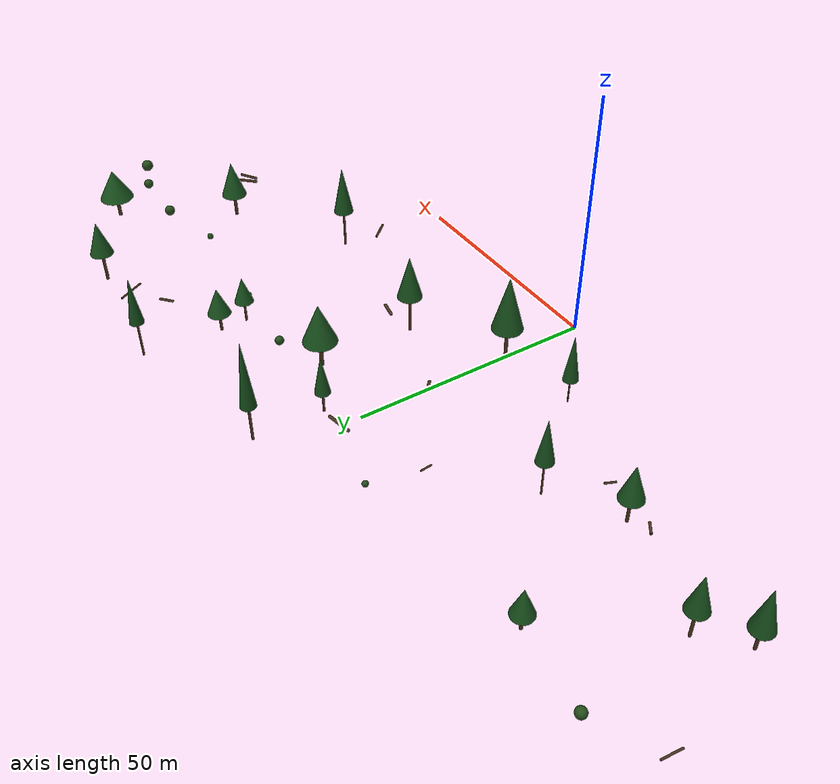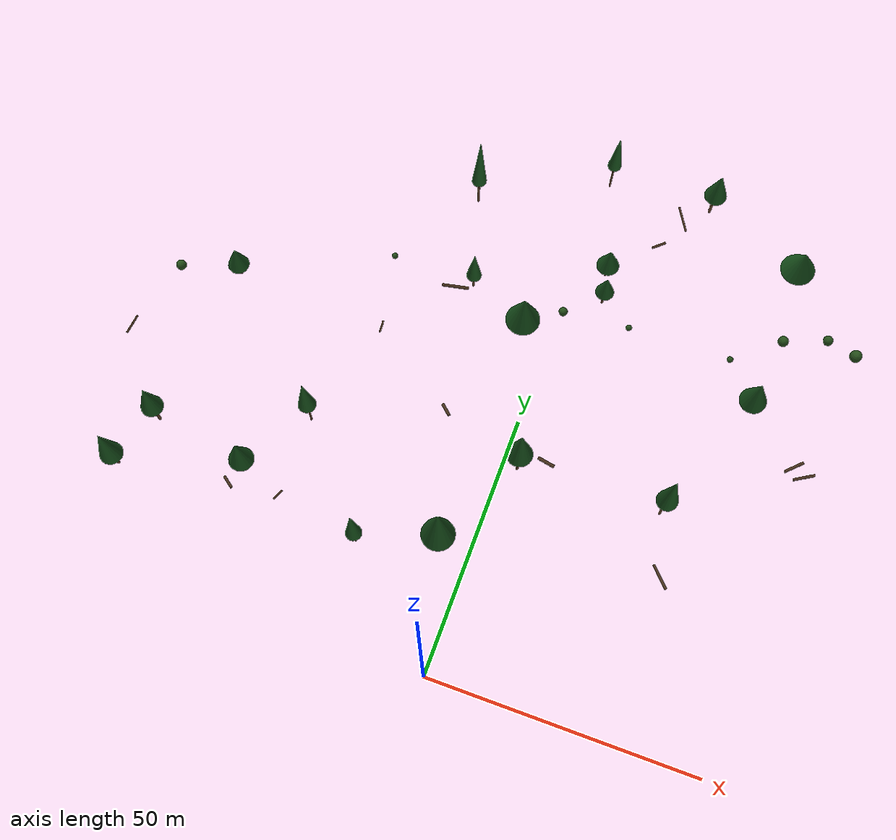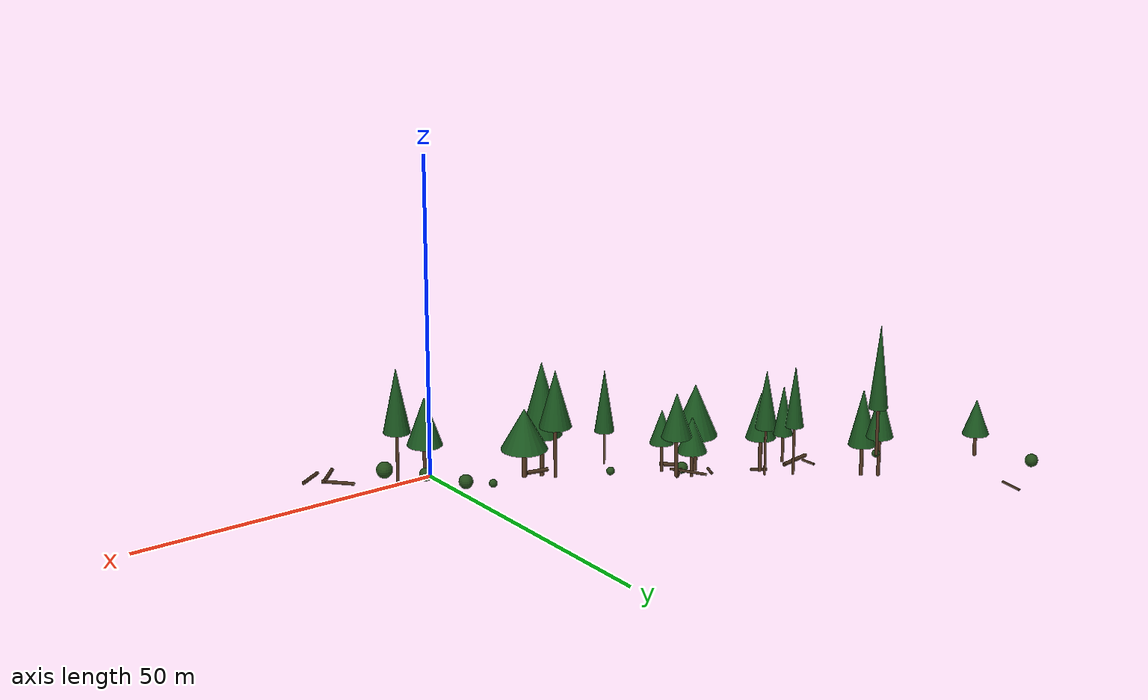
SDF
<sdf version="1.9">
 <world name="blue_mountains">
  <model name="spawn_tree_001">
   <static>true</static>
   <pose>-64.5 29.3 -5.54 0 0 4.25</pose>
   <link name="trunk">
    <pose>0 0 3.9 0 0 0</pose>
    <collision name="c">
     <geometry><cylinder><radius>0.28</radius><length>7.8</length></cylinder></geometry>
    </collision>
    <visual name="v">
     <geometry><cylinder><radius>0.28</radius><length>7.8</length></cylinder></geometry>
     <material><ambient>0.30 0.20 0.12 1</ambient><diffuse>0.35 0.23 0.14 1</diffuse></material>
    </visual>
   </link>
   <link name="canopy">
    <pose>0 0 10.4 0 0 0</pose>
    <collision name="c"><geometry><cone><radius>2.14</radius><length>7.8</length></cone></geometry></collision>
    <visual name="v">
     <geometry><cone><radius>2.14</radius><length>7.8</length></cone></geometry>
     <material><ambient>0.08 0.28 0.10 1</ambient><diffuse>0.10 0.34 0.12 1</diffuse></material>
    </visual>
   </link>
  </model>
  <model name="spawn_tree_002">
   <static>true</static>
   <pose>3.4 37.2 12.71 0 0 3.32</pose>
   <link name="trunk">
    <pose>0 0 4.4 0 0 0</pose>
    <collision name="c">
     <geometry><cylinder><radius>0.24</radius><length>8.8</length></cylinder></geometry>
    </collision>
    <visual name="v">
     <geometry><cylinder><radius>0.24</radius><length>8.8</length></cylinder></geometry>
     <material><ambient>0.30 0.20 0.12 1</ambient><diffuse>0.35 0.23 0.14 1</diffuse></material>
    </visual>
   </link>
   <link name="canopy">
    <pose>0 0 11.5 0 0 0</pose>
    <collision name="c"><geometry><cone><radius>2.26</radius><length>8.1</length></cone></geometry></collision>
    <visual name="v">
     <geometry><cone><radius>2.26</radius><length>8.1</length></cone></geometry>
     <material><ambient>0.08 0.28 0.10 1</ambient><diffuse>0.10 0.34 0.12 1</diffuse></material>
    </visual>
   </link>
  </model>
  <model name="spawn_tree_005">
   <static>true</static>
   <pose>2.5 85.3 28.51 0 0 2.96</pose>
   <link name="trunk">
    <pose>0 0 3.75 0 0 0</pose>
    <collision name="c">
     <geometry><cylinder><radius>0.16</radius><length>7.5</length></cylinder></geometry>
    </collision>
    <visual name="v">
     <geometry><cylinder><radius>0.16</radius><length>7.5</length></cylinder></geometry>
     <material><ambient>0.30 0.20 0.12 1</ambient><diffuse>0.35 0.23 0.14 1</diffuse></material>
    </visual>
   </link>
   <link name="canopy">
    <pose>0 0 10.066666666666666 0 0 0</pose>
    <collision name="c"><geometry><cone><radius>1.12</radius><length>7.7</length></cone></geometry></collision>
    <visual name="v">
     <geometry><cone><radius>1.12</radius><length>7.7</length></cone></geometry>
     <material><ambient>0.08 0.28 0.10 1</ambient><diffuse>0.10 0.34 0.12 1</diffuse></material>
    </visual>
   </link>
  </model>
  <model name="spawn_tree_006">
   <static>true</static>
   <pose>-18.4 77.6 23.78 0 0 5.46</pose>
   <link name="trunk">
    <pose>0 0 4.15 0 0 0</pose>
    <collision name="c">
     <geometry><cylinder><radius>0.2</radius><length>8.3</length></cylinder></geometry>
    </collision>
    <visual name="v">
     <geometry><cylinder><radius>0.2</radius><length>8.3</length></cylinder></geometry>
     <material><ambient>0.30 0.20 0.12 1</ambient><diffuse>0.35 0.23 0.14 1</diffuse></material>
    </visual>
   </link>
   <link name="canopy">
    <pose>0 0 12.033333333333333 0 0 0</pose>
    <collision name="c"><geometry><cone><radius>1.24</radius><length>11.2</length></cone></geometry></collision>
    <visual name="v">
     <geometry><cone><radius>1.24</radius><length>11.2</length></cone></geometry>
     <material><ambient>0.08 0.28 0.10 1</ambient><diffuse>0.10 0.34 0.12 1</diffuse></material>
    </visual>
   </link>
  </model>
  <model name="spawn_tree_009">
   <static>true</static>
   <pose>28.3 36.4 17.22 0 0 1.83</pose>
   <link name="trunk">
    <pose>0 0 4.45 0 0 0</pose>
    <collision name="c">
     <geometry><cylinder><radius>0.21</radius><length>8.9</length></cylinder></geometry>
    </collision>
    <visual name="v">
     <geometry><cylinder><radius>0.21</radius><length>8.9</length></cylinder></geometry>
     <material><ambient>0.30 0.20 0.12 1</ambient><diffuse>0.35 0.23 0.14 1</diffuse></material>
    </visual>
   </link>
   <link name="canopy">
    <pose>0 0 11.866666666666667 0 0 0</pose>
    <collision name="c"><geometry><cone><radius>1.81</radius><length>8.9</length></cone></geometry></collision>
    <visual name="v">
     <geometry><cone><radius>1.81</radius><length>8.9</length></cone></geometry>
     <material><ambient>0.08 0.28 0.10 1</ambient><diffuse>0.10 0.34 0.12 1</diffuse></material>
    </visual>
   </link>
  </model>
  <model name="spawn_tree_013">
   <static>true</static>
   <pose>-19.4 17.9 3.17 0 0 2.45</pose>
   <link name="trunk">
    <pose>0 0 3.45 0 0 0</pose>
    <collision name="c">
     <geometry><cylinder><radius>0.15</radius><length>6.9</length></cylinder></geometry>
    </collision>
    <visual name="v">
     <geometry><cylinder><radius>0.15</radius><length>6.9</length></cylinder></geometry>
     <material><ambient>0.30 0.20 0.12 1</ambient><diffuse>0.35 0.23 0.14 1</diffuse></material>
    </visual>
   </link>
   <link name="canopy">
    <pose>0 0 10.1 0 0 0</pose>
    <collision name="c"><geometry><cone><radius>1.47</radius><length>9.6</length></cone></geometry></collision>
    <visual name="v">
     <geometry><cone><radius>1.47</radius><length>9.6</length></cone></geometry>
     <material><ambient>0.08 0.28 0.10 1</ambient><diffuse>0.10 0.34 0.12 1</diffuse></material>
    </visual>
   </link>
  </model>
  <model name="spawn_tree_014">
   <static>true</static>
   <pose>-35.2 36.2 3.68 0 0 5.43</pose>
   <link name="trunk">
    <pose>0 0 4.45 0 0 0</pose>
    <collision name="c">
     <geometry><cylinder><radius>0.17</radius><length>8.9</length></cylinder></geometry>
    </collision>
    <visual name="v">
     <geometry><cylinder><radius>0.17</radius><length>8.9</length></cylinder></geometry>
     <material><ambient>0.30 0.20 0.12 1</ambient><diffuse>0.35 0.23 0.14 1</diffuse></material>
    </visual>
   </link>
   <link name="canopy">
    <pose>0 0 11.833333333333334 0 0 0</pose>
    <collision name="c"><geometry><cone><radius>1.64</radius><length>8.8</length></cone></geometry></collision>
    <visual name="v">
     <geometry><cone><radius>1.64</radius><length>8.8</length></cone></geometry>
     <material><ambient>0.08 0.28 0.10 1</ambient><diffuse>0.10 0.34 0.12 1</diffuse></material>
    </visual>
   </link>
  </model>
  <model name="spawn_tree_016">
   <static>true</static>
   <pose>7.8 66.3 24.00 0 0 0.34</pose>
   <link name="trunk">
    <pose>0 0 2.3 0 0 0</pose>
    <collision name="c">
     <geometry><cylinder><radius>0.19</radius><length>4.6</length></cylinder></geometry>
    </collision>
    <visual name="v">
     <geometry><cylinder><radius>0.19</radius><length>4.6</length></cylinder></geometry>
     <material><ambient>0.30 0.20 0.12 1</ambient><diffuse>0.35 0.23 0.14 1</diffuse></material>
    </visual>
   </link>
   <link name="canopy">
    <pose>0 0 6.066666666666666 0 0 0</pose>
    <collision name="c"><geometry><cone><radius>1.56</radius><length>4.4</length></cone></geometry></collision>
    <visual name="v">
     <geometry><cone><radius>1.56</radius><length>4.4</length></cone></geometry>
     <material><ambient>0.08 0.28 0.10 1</ambient><diffuse>0.10 0.34 0.12 1</diffuse></material>
    </visual>
   </link>
  </model>
  <model name="spawn_tree_017">
   <static>true</static>
   <pose>6.8 71.1 24.64 0 0 3.8</pose>
   <link name="trunk">
    <pose>0 0 2.05 0 0 0</pose>
    <collision name="c">
     <geometry><cylinder><radius>0.22</radius><length>4.1</length></cylinder></geometry>
    </collision>
    <visual name="v">
     <geometry><cylinder><radius>0.22</radius><length>4.1</length></cylinder></geometry>
     <material><ambient>0.30 0.20 0.12 1</ambient><diffuse>0.35 0.23 0.14 1</diffuse></material>
    </visual>
   </link>
   <link name="canopy">
    <pose>0 0 5.633333333333333 0 0 0</pose>
    <collision name="c"><geometry><cone><radius>1.89</radius><length>4.6</length></cone></geometry></collision>
    <visual name="v">
     <geometry><cone><radius>1.89</radius><length>4.6</length></cone></geometry>
     <material><ambient>0.08 0.28 0.10 1</ambient><diffuse>0.10 0.34 0.12 1</diffuse></material>
    </visual>
   </link>
  </model>
  <model name="spawn_tree_019">
   <static>true</static>
   <pose>35.7 76.1 33.03 0 0 0.04</pose>
   <link name="trunk">
    <pose>0 0 2.15 0 0 0</pose>
    <collision name="c">
     <geometry><cylinder><radius>0.28</radius><length>4.3</length></cylinder></geometry>
    </collision>
    <visual name="v">
     <geometry><cylinder><radius>0.28</radius><length>4.3</length></cylinder></geometry>
     <material><ambient>0.30 0.20 0.12 1</ambient><diffuse>0.35 0.23 0.14 1</diffuse></material>
    </visual>
   </link>
   <link name="canopy">
    <pose>0 0 5.933333333333334 0 0 0</pose>
    <collision name="c"><geometry><cone><radius>2.76</radius><length>4.9</length></cone></geometry></collision>
    <visual name="v">
     <geometry><cone><radius>2.76</radius><length>4.9</length></cone></geometry>
     <material><ambient>0.08 0.28 0.10 1</ambient><diffuse>0.10 0.34 0.12 1</diffuse></material>
    </visual>
   </link>
  </model>
  <model name="spawn_tree_022">
   <static>true</static>
   <pose>35.8 54.9 26.25 0 0 0.46</pose>
   <link name="trunk">
    <pose>0 0 2.6 0 0 0</pose>
    <collision name="c">
     <geometry><cylinder><radius>0.28</radius><length>5.2</length></cylinder></geometry>
    </collision>
    <visual name="v">
     <geometry><cylinder><radius>0.28</radius><length>5.2</length></cylinder></geometry>
     <material><ambient>0.30 0.20 0.12 1</ambient><diffuse>0.35 0.23 0.14 1</diffuse></material>
    </visual>
   </link>
   <link name="canopy">
    <pose>0 0 7.2666666666666675 0 0 0</pose>
    <collision name="c"><geometry><cone><radius>2.21</radius><length>6.2</length></cone></geometry></collision>
    <visual name="v">
     <geometry><cone><radius>2.21</radius><length>6.2</length></cone></geometry>
     <material><ambient>0.08 0.28 0.10 1</ambient><diffuse>0.10 0.34 0.12 1</diffuse></material>
    </visual>
   </link>
  </model>
  <model name="spawn_tree_024">
   <static>true</static>
   <pose>-3.7 58.7 19.06 0 0 5.47</pose>
   <link name="trunk">
    <pose>0 0 3.05 0 0 0</pose>
    <collision name="c">
     <geometry><cylinder><radius>0.34</radius><length>6.1</length></cylinder></geometry>
    </collision>
    <visual name="v">
     <geometry><cylinder><radius>0.34</radius><length>6.1</length></cylinder></geometry>
     <material><ambient>0.30 0.20 0.12 1</ambient><diffuse>0.35 0.23 0.14 1</diffuse></material>
    </visual>
   </link>
   <link name="canopy">
    <pose>0 0 8.433333333333334 0 0 0</pose>
    <collision name="c"><geometry><cone><radius>2.92</radius><length>7.0</length></cone></geometry></collision>
    <visual name="v">
     <geometry><cone><radius>2.92</radius><length>7.0</length></cone></geometry>
     <material><ambient>0.08 0.28 0.10 1</ambient><diffuse>0.10 0.34 0.12 1</diffuse></material>
    </visual>
   </link>
  </model>
  <model name="spawn_tree_027">
   <static>true</static>
   <pose>-44.1 24.7 -1.49 0 0 3.49</pose>
   <link name="trunk">
    <pose>0 0 3.35 0 0 0</pose>
    <collision name="c">
     <geometry><cylinder><radius>0.3</radius><length>6.7</length></cylinder></geometry>
    </collision>
    <visual name="v">
     <geometry><cylinder><radius>0.3</radius><length>6.7</length></cylinder></geometry>
     <material><ambient>0.30 0.20 0.12 1</ambient><diffuse>0.35 0.23 0.14 1</diffuse></material>
    </visual>
   </link>
   <link name="canopy">
    <pose>0 0 9.133333333333333 0 0 0</pose>
    <collision name="c"><geometry><cone><radius>2.34</radius><length>7.3</length></cone></geometry></collision>
    <visual name="v">
     <geometry><cone><radius>2.34</radius><length>7.3</length></cone></geometry>
     <material><ambient>0.08 0.28 0.10 1</ambient><diffuse>0.10 0.34 0.12 1</diffuse></material>
    </visual>
   </link>
  </model>
  <model name="spawn_tree_029">
   <static>true</static>
   <pose>-5.3 21.7 5.94 0 0 5.07</pose>
   <link name="trunk">
    <pose>0 0 4.1 0 0 0</pose>
    <collision name="c">
     <geometry><cylinder><radius>0.34</radius><length>8.2</length></cylinder></geometry>
    </collision>
    <visual name="v">
     <geometry><cylinder><radius>0.34</radius><length>8.2</length></cylinder></geometry>
     <material><ambient>0.30 0.20 0.12 1</ambient><diffuse>0.35 0.23 0.14 1</diffuse></material>
    </visual>
   </link>
   <link name="canopy">
    <pose>0 0 11.866666666666665 0 0 0</pose>
    <collision name="c"><geometry><cone><radius>2.99</radius><length>11.0</length></cone></geometry></collision>
    <visual name="v">
     <geometry><cone><radius>2.99</radius><length>11.0</length></cone></geometry>
     <material><ambient>0.08 0.28 0.10 1</ambient><diffuse>0.10 0.34 0.12 1</diffuse></material>
    </visual>
   </link>
  </model>
  <model name="spawn_tree_030">
   <static>true</static>
   <pose>19.7 84.2 32.00 0 0 3.72</pose>
   <link name="trunk">
    <pose>0 0 2.9 0 0 0</pose>
    <collision name="c">
     <geometry><cylinder><radius>0.23</radius><length>5.8</length></cylinder></geometry>
    </collision>
    <visual name="v">
     <geometry><cylinder><radius>0.23</radius><length>5.8</length></cylinder></geometry>
     <material><ambient>0.30 0.20 0.12 1</ambient><diffuse>0.35 0.23 0.14 1</diffuse></material>
    </visual>
   </link>
   <link name="canopy">
    <pose>0 0 7.6 0 0 0</pose>
    <collision name="c"><geometry><cone><radius>1.81</radius><length>5.4</length></cone></geometry></collision>
    <visual name="v">
     <geometry><cone><radius>1.81</radius><length>5.4</length></cone></geometry>
     <material><ambient>0.08 0.28 0.10 1</ambient><diffuse>0.10 0.34 0.12 1</diffuse></material>
    </visual>
   </link>
  </model>
  <model name="spawn_tree_031">
   <static>true</static>
   <pose>-69.9 19.6 -9.86 0 0 4.64</pose>
   <link name="trunk">
    <pose>0 0 3.4 0 0 0</pose>
    <collision name="c">
     <geometry><cylinder><radius>0.31</radius><length>6.8</length></cylinder></geometry>
    </collision>
    <visual name="v">
     <geometry><cylinder><radius>0.31</radius><length>6.8</length></cylinder></geometry>
     <material><ambient>0.30 0.20 0.12 1</ambient><diffuse>0.35 0.23 0.14 1</diffuse></material>
    </visual>
   </link>
   <link name="canopy">
    <pose>0 0 9.933333333333334 0 0 0</pose>
    <collision name="c"><geometry><cone><radius>2.28</radius><length>9.4</length></cone></geometry></collision>
    <visual name="v">
     <geometry><cone><radius>2.28</radius><length>9.4</length></cone></geometry>
     <material><ambient>0.08 0.28 0.10 1</ambient><diffuse>0.10 0.34 0.12 1</diffuse></material>
    </visual>
   </link>
  </model>
  <model name="spawn_tree_033">
   <static>true</static>
   <pose>-14.3 64.0 19.48 0 0 2.78</pose>
   <link name="trunk">
    <pose>0 0 2.5 0 0 0</pose>
    <collision name="c">
     <geometry><cylinder><radius>0.19</radius><length>5.0</length></cylinder></geometry>
    </collision>
    <visual name="v">
     <geometry><cylinder><radius>0.19</radius><length>5.0</length></cylinder></geometry>
     <material><ambient>0.30 0.20 0.12 1</ambient><diffuse>0.35 0.23 0.14 1</diffuse></material>
    </visual>
   </link>
   <link name="canopy">
    <pose>0 0 7.266666666666667 0 0 0</pose>
    <collision name="c"><geometry><cone><radius>1.29</radius><length>6.8</length></cone></geometry></collision>
    <visual name="v">
     <geometry><cone><radius>1.29</radius><length>6.8</length></cone></geometry>
     <material><ambient>0.08 0.28 0.10 1</ambient><diffuse>0.10 0.34 0.12 1</diffuse></material>
    </visual>
   </link>
  </model>
  <model name="spawn_tree_037">
   <static>true</static>
   <pose>-57.1 57.1 8.36 0 0 0.79</pose>
   <link name="trunk">
    <pose>0 0 2.1 0 0 0</pose>
    <collision name="c">
     <geometry><cylinder><radius>0.26</radius><length>4.2</length></cylinder></geometry>
    </collision>
    <visual name="v">
     <geometry><cylinder><radius>0.26</radius><length>4.2</length></cylinder></geometry>
     <material><ambient>0.30 0.20 0.12 1</ambient><diffuse>0.35 0.23 0.14 1</diffuse></material>
    </visual>
   </link>
   <link name="canopy">
    <pose>0 0 5.933333333333334 0 0 0</pose>
    <collision name="c"><geometry><cone><radius>1.94</radius><length>5.2</length></cone></geometry></collision>
    <visual name="v">
     <geometry><cone><radius>1.94</radius><length>5.2</length></cone></geometry>
     <material><ambient>0.08 0.28 0.10 1</ambient><diffuse>0.10 0.34 0.12 1</diffuse></material>
    </visual>
   </link>
  </model>
  <model name="spawn_bush_003">
   <static>true</static>
   <pose>44.0 67.9 32.63 0 0 4.43</pose>
   <link name="foliage">
    <collision name="c"><geometry><sphere><radius>0.8</radius></sphere></geometry></collision>
    <visual name="v">
     <geometry><sphere><radius>0.8</radius></sphere></geometry>
     <material><ambient>0.10 0.24 0.08 1</ambient><diffuse>0.14 0.30 0.10 1</diffuse></material>
    </visual>
   </link>
  </model>
  <model name="spawn_bush_009">
   <static>true</static>
   <pose>2.1 63.3 22.21 0 0 1.26</pose>
   <link name="foliage">
    <collision name="c"><geometry><sphere><radius>0.76</radius></sphere></geometry></collision>
    <visual name="v">
     <geometry><sphere><radius>0.76</radius></sphere></geometry>
     <material><ambient>0.10 0.24 0.08 1</ambient><diffuse>0.14 0.30 0.10 1</diffuse></material>
    </visual>
   </link>
  </model>
  <model name="spawn_bush_011">
   <static>true</static>
   <pose>37.7 66.8 29.87 0 0 2.72</pose>
   <link name="foliage">
    <collision name="c"><geometry><sphere><radius>0.87</radius></sphere></geometry></collision>
    <visual name="v">
     <geometry><sphere><radius>0.87</radius></sphere></geometry>
     <material><ambient>0.10 0.24 0.08 1</ambient><diffuse>0.14 0.30 0.10 1</diffuse></material>
    </visual>
   </link>
  </model>
  <model name="spawn_bush_012">
   <static>true</static>
   <pose>48.6 66.2 33.71 0 0 3.4</pose>
   <link name="foliage">
    <collision name="c"><geometry><sphere><radius>0.98</radius></sphere></geometry></collision>
    <visual name="v">
     <geometry><sphere><radius>0.98</radius></sphere></geometry>
     <material><ambient>0.10 0.24 0.08 1</ambient><diffuse>0.14 0.30 0.10 1</diffuse></material>
    </visual>
   </link>
  </model>
  <model name="spawn_bush_013">
   <static>true</static>
   <pose>13.5 63.2 24.39 0 0 2.31</pose>
   <link name="foliage">
    <collision name="c"><geometry><sphere><radius>0.52</radius></sphere></geometry></collision>
    <visual name="v">
     <geometry><sphere><radius>0.52</radius></sphere></geometry>
     <material><ambient>0.10 0.24 0.08 1</ambient><diffuse>0.14 0.30 0.10 1</diffuse></material>
    </visual>
   </link>
  </model>
  <model name="spawn_bush_015">
   <static>true</static>
   <pose>-29.6 65.6 17.62 0 0 4.18</pose>
   <link name="foliage">
    <collision name="c"><geometry><sphere><radius>0.53</radius></sphere></geometry></collision>
    <visual name="v">
     <geometry><sphere><radius>0.53</radius></sphere></geometry>
     <material><ambient>0.10 0.24 0.08 1</ambient><diffuse>0.14 0.30 0.10 1</diffuse></material>
    </visual>
   </link>
  </model>
  <model name="spawn_bush_018">
   <static>true</static>
   <pose>-69.9 56.4 4.34 0 0 5.27</pose>
   <link name="foliage">
    <collision name="c"><geometry><sphere><radius>0.97</radius></sphere></geometry></collision>
    <visual name="v">
     <geometry><sphere><radius>0.97</radius></sphere></geometry>
     <material><ambient>0.10 0.24 0.08 1</ambient><diffuse>0.14 0.30 0.10 1</diffuse></material>
    </visual>
   </link>
  </model>
  <model name="spawn_bush_021">
   <static>true</static>
   <pose>30.8 62.4 26.57 0 0 0.14</pose>
   <link name="foliage">
    <collision name="c"><geometry><sphere><radius>0.52</radius></sphere></geometry></collision>
    <visual name="v">
     <geometry><sphere><radius>0.52</radius></sphere></geometry>
     <material><ambient>0.10 0.24 0.08 1</ambient><diffuse>0.14 0.30 0.10 1</diffuse></material>
    </visual>
   </link>
  </model>
  <model name="spawn_log_001">
   <static>true</static>
   <pose>7.8 39.1 15.26 1.5708 0 4.52</pose>
   <link name="log">
    <collision name="c">
     <geometry><cylinder><radius>0.29</radius><length>3.1</length></cylinder></geometry>
    </collision>
    <visual name="v">
     <geometry><cylinder><radius>0.29</radius><length>3.1</length></cylinder></geometry>
     <material><ambient>0.22 0.15 0.09 1</ambient><diffuse>0.28 0.19 0.11 1</diffuse></material>
    </visual>
   </link>
  </model>
  <model name="spawn_log_002">
   <static>true</static>
   <pose>-36.5 21.9 -0.63 1.5708 0 2.74</pose>
   <link name="log">
    <collision name="c">
     <geometry><cylinder><radius>0.2</radius><length>2.19</length></cylinder></geometry>
    </collision>
    <visual name="v">
     <geometry><cylinder><radius>0.2</radius><length>2.19</length></cylinder></geometry>
     <material><ambient>0.22 0.15 0.09 1</ambient><diffuse>0.28 0.19 0.11 1</diffuse></material>
    </visual>
   </link>
  </model>
  <model name="spawn_log_003">
   <static>true</static>
   <pose>47.5 47.0 26.2 1.5708 0 5.26</pose>
   <link name="log">
    <collision name="c">
     <geometry><cylinder><radius>0.23</radius><length>3.57</length></cylinder></geometry>
    </collision>
    <visual name="v">
     <geometry><cylinder><radius>0.23</radius><length>3.57</length></cylinder></geometry>
     <material><ambient>0.22 0.15 0.09 1</ambient><diffuse>0.28 0.19 0.11 1</diffuse></material>
    </visual>
   </link>
  </model>
  <model name="spawn_log_004">
   <static>true</static>
   <pose>-46.6 21.5 -2.84 1.5708 0 4.07</pose>
   <link name="log">
    <collision name="c">
     <geometry><cylinder><radius>0.25</radius><length>2.59</length></cylinder></geometry>
    </collision>
    <visual name="v">
     <geometry><cylinder><radius>0.25</radius><length>2.59</length></cylinder></geometry>
     <material><ambient>0.22 0.15 0.09 1</ambient><diffuse>0.28 0.19 0.11 1</diffuse></material>
    </visual>
   </link>
  </model>
  <model name="spawn_log_007">
   <static>true</static>
   <pose>31.7 26.7 15.2 1.5708 0 3.89</pose>
   <link name="log">
    <collision name="c">
     <geometry><cylinder><radius>0.23</radius><length>4.51</length></cylinder></geometry>
    </collision>
    <visual name="v">
     <geometry><cylinder><radius>0.23</radius><length>4.51</length></cylinder></geometry>
     <material><ambient>0.22 0.15 0.09 1</ambient><diffuse>0.28 0.19 0.11 1</diffuse></material>
    </visual>
   </link>
  </model>
  <model name="spawn_log_008">
   <static>true</static>
   <pose>-77.6 45.3 -5.2 1.5708 0 3.04</pose>
   <link name="log">
    <collision name="c">
     <geometry><cylinder><radius>0.19</radius><length>3.99</length></cylinder></geometry>
    </collision>
    <visual name="v">
     <geometry><cylinder><radius>0.19</radius><length>3.99</length></cylinder></geometry>
     <material><ambient>0.22 0.15 0.09 1</ambient><diffuse>0.28 0.19 0.11 1</diffuse></material>
    </visual>
   </link>
  </model>
  <model name="spawn_log_009">
   <static>true</static>
   <pose>13.7 77.2 28.71 1.5708 0 2.3</pose>
   <link name="log">
    <collision name="c">
     <geometry><cylinder><radius>0.2</radius><length>2.4</length></cylinder></geometry>
    </collision>
    <visual name="v">
     <geometry><cylinder><radius>0.2</radius><length>2.4</length></cylinder></geometry>
     <material><ambient>0.22 0.15 0.09 1</ambient><diffuse>0.28 0.19 0.11 1</diffuse></material>
    </visual>
   </link>
  </model>
  <model name="spawn_log_011">
   <static>true</static>
   <pose>-27.9 53.9 13.03 1.5708 0 3.24</pose>
   <link name="log">
    <collision name="c">
     <geometry><cylinder><radius>0.16</radius><length>2.18</length></cylinder></geometry>
    </collision>
    <visual name="v">
     <geometry><cylinder><radius>0.16</radius><length>2.18</length></cylinder></geometry>
     <material><ambient>0.22 0.15 0.09 1</ambient><diffuse>0.28 0.19 0.11 1</diffuse></material>
    </visual>
   </link>
  </model>
  <model name="spawn_log_013">
   <static>true</static>
   <pose>45.5 48.0 26.49 1.5708 0 5.5</pose>
   <link name="log">
    <collision name="c">
     <geometry><cylinder><radius>0.24</radius><length>3.43</length></cylinder></geometry>
    </collision>
    <visual name="v">
     <geometry><cylinder><radius>0.24</radius><length>3.43</length></cylinder></geometry>
     <material><ambient>0.22 0.15 0.09 1</ambient><diffuse>0.28 0.19 0.11 1</diffuse></material>
    </visual>
   </link>
  </model>
  <model name="spawn_log_014">
   <static>true</static>
   <pose>-11.7 43.0 12.98 1.5708 0 0.83</pose>
   <link name="log">
    <collision name="c">
     <geometry><cylinder><radius>0.27</radius><length>2.39</length></cylinder></geometry>
    </collision>
    <visual name="v">
     <geometry><cylinder><radius>0.27</radius><length>2.39</length></cylinder></geometry>
     <material><ambient>0.22 0.15 0.09 1</ambient><diffuse>0.28 0.19 0.11 1</diffuse></material>
    </visual>
   </link>
  </model>
  <model name="spawn_log_015">
   <static>true</static>
   <pose>-17.3 63.1 18.74 1.5708 0 4.91</pose>
   <link name="log">
    <collision name="c">
     <geometry><cylinder><radius>0.26</radius><length>4.64</length></cylinder></geometry>
    </collision>
    <visual name="v">
     <geometry><cylinder><radius>0.26</radius><length>4.64</length></cylinder></geometry>
     <material><ambient>0.22 0.15 0.09 1</ambient><diffuse>0.28 0.19 0.11 1</diffuse></material>
    </visual>
   </link>
  </model>
  <model name="spawn_log_016">
   <static>true</static>
   <pose>16.0 81.9 30.93 1.5708 0 0.53</pose>
   <link name="log">
    <collision name="c">
     <geometry><cylinder><radius>0.16</radius><length>4.58</length></cylinder></geometry>
    </collision>
    <visual name="v">
     <geometry><cylinder><radius>0.16</radius><length>4.58</length></cylinder></geometry>
     <material><ambient>0.22 0.15 0.09 1</ambient><diffuse>0.28 0.19 0.11 1</diffuse></material>
    </visual>
   </link>
  </model>
 </world>
</sdf>
